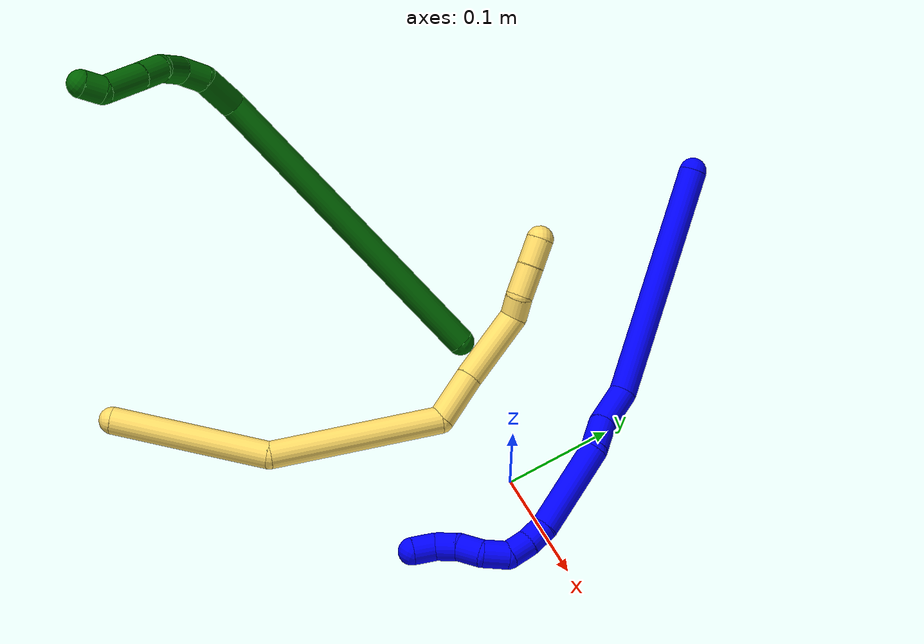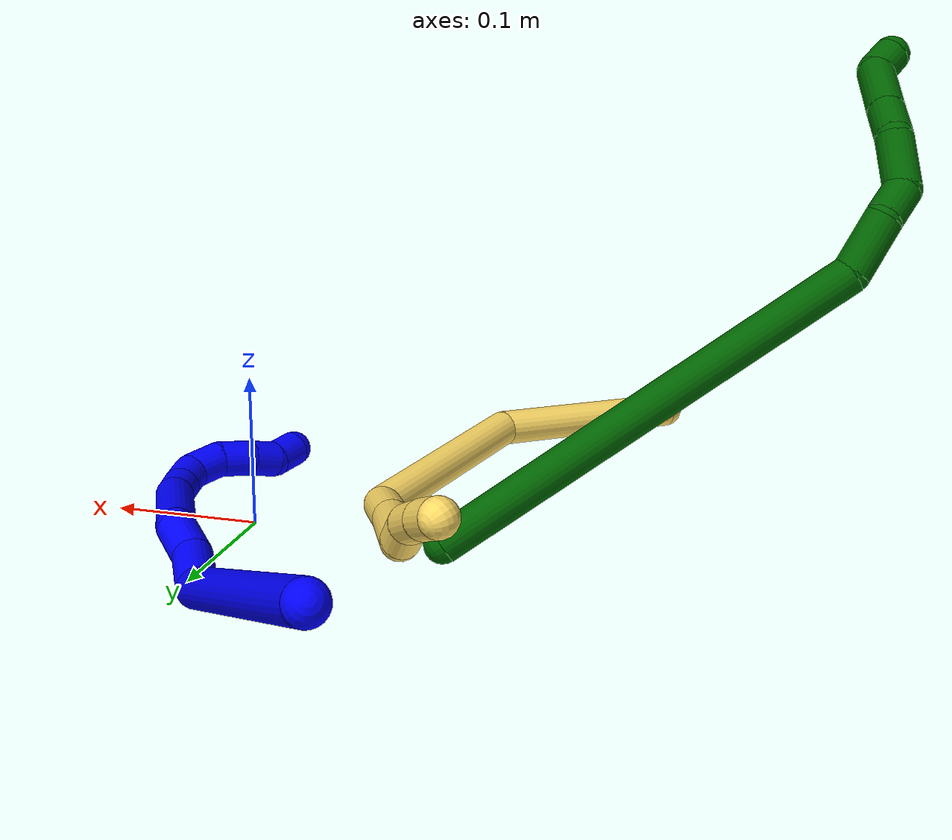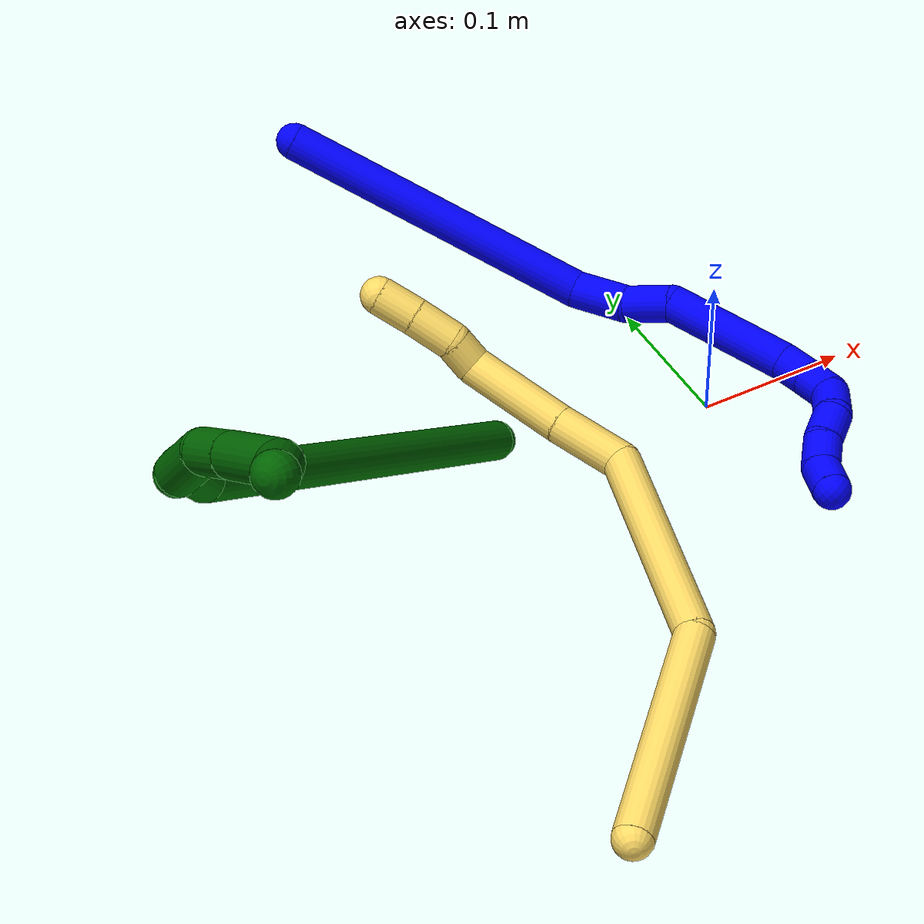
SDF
<sdf version="1.7">
 <world name="default">
  <model name="1">
   <static>0</static>
   <link name="1">
    <collision name="collision-cylinder-e_1_1_4">
     <pose>0.025068 0.01113 -0.103109 -3.03406 0.237165 -2.29305</pose>
     <geometry><cylinder><radius>0.0125</radius><length>0.21339</length></cylinder></geometry>
     <surface>
      <friction><ode><mu>1.16</mu><mu2>1.16</mu2><slip1>0</slip1><slip2>0</slip2></ode></friction>
      <contact><ode><kp>1e+06</kp><kd>1</kd><max_vel>0</max_vel><min_depth>0.001</min_depth></ode></contact>
     </surface>
    </collision>
    <visual name="visual-cylinder-e_1_1_4">
     <pose>0.025068 0.01113 -0.103109 -3.03406 0.237165 -2.29305</pose>
     <geometry><cylinder><radius>0.0125</radius><length>0.21339</length></cylinder></geometry>
     <material><ambient>0 0 1 1</ambient></material>
    </visual>
    <collision name="collision-cylinder-e_2_4_5">
     <pose>0.061311 0.018172 -0.221663 2.8828 0.61039 2.35821</pose>
     <geometry><cylinder><radius>0.0125</radius><length>0.038996</length></cylinder></geometry>
     <surface>
      <friction><ode><mu>1.16</mu><mu2>1.16</mu2><slip1>0</slip1><slip2>0</slip2></ode></friction>
      <contact><ode><kp>1e+06</kp><kd>1</kd><max_vel>0</max_vel><min_depth>0.001</min_depth></ode></contact>
     </surface>
    </collision>
    <visual name="visual-cylinder-e_2_4_5">
     <pose>0.061311 0.018172 -0.221663 2.8828 0.61039 2.35821</pose>
     <geometry><cylinder><radius>0.0125</radius><length>0.038996</length></cylinder></geometry>
     <material><ambient>0 0 1 1</ambient></material>
    </visual>
    <collision name="collision-cylinder-e_3_5_6">
     <pose>0.084318 0.013975 -0.247639 3.13132 0.843456 3.1187</pose>
     <geometry><cylinder><radius>0.0125</radius><length>0.031678</length></cylinder></geometry>
     <surface>
      <friction><ode><mu>1.16</mu><mu2>1.16</mu2><slip1>0</slip1><slip2>0</slip2></ode></friction>
      <contact><ode><kp>1e+06</kp><kd>1</kd><max_vel>0</max_vel><min_depth>0.001</min_depth></ode></contact>
     </surface>
    </collision>
    <visual name="visual-cylinder-e_3_5_6">
     <pose>0.084318 0.013975 -0.247639 3.13132 0.843456 3.1187</pose>
     <geometry><cylinder><radius>0.0125</radius><length>0.031678</length></cylinder></geometry>
     <material><ambient>0 0 1 1</ambient></material>
    </visual>
    <collision name="collision-cylinder-e_4_6_7">
     <pose>0.112217 0.006322 -0.296809 2.94876 0.387498 2.22567</pose>
     <geometry><cylinder><radius>0.0125</radius><length>0.085043</length></cylinder></geometry>
     <surface>
      <friction><ode><mu>1.16</mu><mu2>1.16</mu2><slip1>0</slip1><slip2>0</slip2></ode></friction>
      <contact><ode><kp>1e+06</kp><kd>1</kd><max_vel>0</max_vel><min_depth>0.001</min_depth></ode></contact>
     </surface>
    </collision>
    <visual name="visual-cylinder-e_4_6_7">
     <pose>0.112217 0.006322 -0.296809 2.94876 0.387498 2.22567</pose>
     <geometry><cylinder><radius>0.0125</radius><length>0.085043</length></cylinder></geometry>
     <material><ambient>0 0 1 1</ambient></material>
    </visual>
    <collision name="collision-cylinder-e_5_7_8">
     <pose>0.132085 -0.005477 -0.344174 2.68787 0.373166 1.37101</pose>
     <geometry><cylinder><radius>0.0125</radius><length>0.020852</length></cylinder></geometry>
     <surface>
      <friction><ode><mu>1.16</mu><mu2>1.16</mu2><slip1>0</slip1><slip2>0</slip2></ode></friction>
      <contact><ode><kp>1e+06</kp><kd>1</kd><max_vel>0</max_vel><min_depth>0.001</min_depth></ode></contact>
     </surface>
    </collision>
    <visual name="visual-cylinder-e_5_7_8">
     <pose>0.132085 -0.005477 -0.344174 2.68787 0.373166 1.37101</pose>
     <geometry><cylinder><radius>0.0125</radius><length>0.020852</length></cylinder></geometry>
     <material><ambient>0 0 1 1</ambient></material>
    </visual>
    <collision name="collision-cylinder-e_6_8_9">
     <pose>0.140308 -0.015708 -0.360782 2.49295 0.420351 1.13086</pose>
     <geometry><cylinder><radius>0.0125</radius><length>0.021668</length></cylinder></geometry>
     <surface>
      <friction><ode><mu>1.16</mu><mu2>1.16</mu2><slip1>0</slip1><slip2>0</slip2></ode></friction>
      <contact><ode><kp>1e+06</kp><kd>1</kd><max_vel>0</max_vel><min_depth>0.001</min_depth></ode></contact>
     </surface>
    </collision>
    <visual name="visual-cylinder-e_6_8_9">
     <pose>0.140308 -0.015708 -0.360782 2.49295 0.420351 1.13086</pose>
     <geometry><cylinder><radius>0.0125</radius><length>0.021668</length></cylinder></geometry>
     <material><ambient>0 0 1 1</ambient></material>
    </visual>
    <collision name="collision-cylinder-e_7_9_10">
     <pose>0.145685 -0.032842 -0.372631 1.91233 0.080586 0.114108</pose>
     <geometry><cylinder><radius>0.0125</radius><length>0.023763</length></cylinder></geometry>
     <surface>
      <friction><ode><mu>1.16</mu><mu2>1.16</mu2><slip1>0</slip1><slip2>0</slip2></ode></friction>
      <contact><ode><kp>1e+06</kp><kd>1</kd><max_vel>0</max_vel><min_depth>0.001</min_depth></ode></contact>
     </surface>
    </collision>
    <visual name="visual-cylinder-e_7_9_10">
     <pose>0.145685 -0.032842 -0.372631 1.91233 0.080586 0.114108</pose>
     <geometry><cylinder><radius>0.0125</radius><length>0.023763</length></cylinder></geometry>
     <material><ambient>0 0 1 1</ambient></material>
    </visual>
    <collision name="collision-cylinder-e_8_10_11">
     <pose>0.14309 -0.054128 -0.378788 1.78387 -0.330217 -0.407334</pose>
     <geometry><cylinder><radius>0.0125</radius><length>0.021907</length></cylinder></geometry>
     <surface>
      <friction><ode><mu>1.16</mu><mu2>1.16</mu2><slip1>0</slip1><slip2>0</slip2></ode></friction>
      <contact><ode><kp>1e+06</kp><kd>1</kd><max_vel>0</max_vel><min_depth>0.001</min_depth></ode></contact>
     </surface>
    </collision>
    <visual name="visual-cylinder-e_8_10_11">
     <pose>0.14309 -0.054128 -0.378788 1.78387 -0.330217 -0.407334</pose>
     <geometry><cylinder><radius>0.0125</radius><length>0.021907</length></cylinder></geometry>
     <material><ambient>0 0 1 1</ambient></material>
    </visual>
    <collision name="collision-cylinder-e_9_11_12">
     <pose>0.136457 -0.073013 -0.385589 2.05531 -0.301888 -0.493615</pose>
     <geometry><cylinder><radius>0.0125</radius><length>0.020731</length></cylinder></geometry>
     <surface>
      <friction><ode><mu>1.16</mu><mu2>1.16</mu2><slip1>0</slip1><slip2>0</slip2></ode></friction>
      <contact><ode><kp>1e+06</kp><kd>1</kd><max_vel>0</max_vel><min_depth>0.001</min_depth></ode></contact>
     </surface>
    </collision>
    <visual name="visual-cylinder-e_9_11_12">
     <pose>0.136457 -0.073013 -0.385589 2.05531 -0.301888 -0.493615</pose>
     <geometry><cylinder><radius>0.0125</radius><length>0.020731</length></cylinder></geometry>
     <material><ambient>0 0 1 1</ambient></material>
    </visual>
    <collision name="collision-cylinder-e_10_12_2">
     <pose>0.13519 -0.090791 -0.396201 2.15794 0.165991 0.308089</pose>
     <geometry><cylinder><radius>0.0125</radius><length>0.021974</length></cylinder></geometry>
     <surface>
      <friction><ode><mu>1.16</mu><mu2>1.16</mu2><slip1>0</slip1><slip2>0</slip2></ode></friction>
      <contact><ode><kp>1e+06</kp><kd>1</kd><max_vel>0</max_vel><min_depth>0.001</min_depth></ode></contact>
     </surface>
    </collision>
    <visual name="visual-cylinder-e_10_12_2">
     <pose>0.13519 -0.090791 -0.396201 2.15794 0.165991 0.308089</pose>
     <geometry><cylinder><radius>0.0125</radius><length>0.021974</length></cylinder></geometry>
     <material><ambient>0 0 1 1</ambient></material>
    </visual>
    <collision name="collision-sphere-2">
     <pose>0.137005 -0.099812 -0.402204 0 -0 0</pose>
     <geometry><sphere><radius>0.0125</radius></sphere></geometry>
     <surface>
      <friction><ode><mu>1.16</mu><mu2>1.16</mu2><slip1>0</slip1><slip2>0</slip2></ode></friction>
      <contact><ode><kp>1e+06</kp><kd>1</kd><max_vel>0</max_vel><min_depth>0.001</min_depth></ode></contact>
     </surface>
    </collision>
    <visual name="visual-sphere-2">
     <pose>0.137005 -0.099812 -0.402204 0 -0 0</pose>
     <geometry><sphere><radius>0.0125</radius></sphere></geometry>
     <material><ambient>0 0 1 1</ambient></material>
    </visual>
    <collision name="collision-sphere-12">
     <pose>0.133375 -0.08177 -0.390198 0 -0 0</pose>
     <geometry><sphere><radius>0.0125</radius></sphere></geometry>
     <surface>
      <friction><ode><mu>1.16</mu><mu2>1.16</mu2><slip1>0</slip1><slip2>0</slip2></ode></friction>
      <contact><ode><kp>1e+06</kp><kd>1</kd><max_vel>0</max_vel><min_depth>0.001</min_depth></ode></contact>
     </surface>
    </collision>
    <visual name="visual-sphere-12">
     <pose>0.133375 -0.08177 -0.390198 0 -0 0</pose>
     <geometry><sphere><radius>0.0125</radius></sphere></geometry>
     <material><ambient>0 0 1 1</ambient></material>
    </visual>
    <collision name="collision-sphere-11">
     <pose>0.139538 -0.064255 -0.380979 0 -0 0</pose>
     <geometry><sphere><radius>0.0125</radius></sphere></geometry>
     <surface>
      <friction><ode><mu>1.16</mu><mu2>1.16</mu2><slip1>0</slip1><slip2>0</slip2></ode></friction>
      <contact><ode><kp>1e+06</kp><kd>1</kd><max_vel>0</max_vel><min_depth>0.001</min_depth></ode></contact>
     </surface>
    </collision>
    <visual name="visual-sphere-11">
     <pose>0.139538 -0.064255 -0.380979 0 -0 0</pose>
     <geometry><sphere><radius>0.0125</radius></sphere></geometry>
     <material><ambient>0 0 1 1</ambient></material>
    </visual>
    <collision name="collision-sphere-10">
     <pose>0.146642 -0.044001 -0.376597 0 -0 0</pose>
     <geometry><sphere><radius>0.0125</radius></sphere></geometry>
     <surface>
      <friction><ode><mu>1.16</mu><mu2>1.16</mu2><slip1>0</slip1><slip2>0</slip2></ode></friction>
      <contact><ode><kp>1e+06</kp><kd>1</kd><max_vel>0</max_vel><min_depth>0.001</min_depth></ode></contact>
     </surface>
    </collision>
    <visual name="visual-sphere-10">
     <pose>0.146642 -0.044001 -0.376597 0 -0 0</pose>
     <geometry><sphere><radius>0.0125</radius></sphere></geometry>
     <material><ambient>0 0 1 1</ambient></material>
    </visual>
    <collision name="collision-sphere-9">
     <pose>0.144729 -0.021683 -0.368664 0 -0 0</pose>
     <geometry><sphere><radius>0.0125</radius></sphere></geometry>
     <surface>
      <friction><ode><mu>1.16</mu><mu2>1.16</mu2><slip1>0</slip1><slip2>0</slip2></ode></friction>
      <contact><ode><kp>1e+06</kp><kd>1</kd><max_vel>0</max_vel><min_depth>0.001</min_depth></ode></contact>
     </surface>
    </collision>
    <visual name="visual-sphere-9">
     <pose>0.144729 -0.021683 -0.368664 0 -0 0</pose>
     <geometry><sphere><radius>0.0125</radius></sphere></geometry>
     <material><ambient>0 0 1 1</ambient></material>
    </visual>
    <collision name="collision-sphere-4">
     <pose>0.050135 0.02226 -0.206218 0 -0 0</pose>
     <geometry><sphere><radius>0.0125</radius></sphere></geometry>
     <surface>
      <friction><ode><mu>1.16</mu><mu2>1.16</mu2><slip1>0</slip1><slip2>0</slip2></ode></friction>
      <contact><ode><kp>1e+06</kp><kd>1</kd><max_vel>0</max_vel><min_depth>0.001</min_depth></ode></contact>
     </surface>
    </collision>
    <visual name="visual-sphere-4">
     <pose>0.050135 0.02226 -0.206218 0 -0 0</pose>
     <geometry><sphere><radius>0.0125</radius></sphere></geometry>
     <material><ambient>0 0 1 1</ambient></material>
    </visual>
    <collision name="collision-sphere-1">
     <geometry><sphere><radius>0.0125</radius></sphere></geometry>
     <surface>
      <friction><ode><mu>1.16</mu><mu2>1.16</mu2><slip1>0</slip1><slip2>0</slip2></ode></friction>
      <contact><ode><kp>1e+06</kp><kd>1</kd><max_vel>0</max_vel><min_depth>0.001</min_depth></ode></contact>
     </surface>
    </collision>
    <visual name="visual-sphere-1">
     <geometry><sphere><radius>0.0125</radius></sphere></geometry>
     <material><ambient>0 0 1 1</ambient></material>
    </visual>
    <collision name="collision-sphere-8">
     <pose>0.135886 -0.009733 -0.3529 0 -0 0</pose>
     <geometry><sphere><radius>0.0125</radius></sphere></geometry>
     <surface>
      <friction><ode><mu>1.16</mu><mu2>1.16</mu2><slip1>0</slip1><slip2>0</slip2></ode></friction>
      <contact><ode><kp>1e+06</kp><kd>1</kd><max_vel>0</max_vel><min_depth>0.001</min_depth></ode></contact>
     </surface>
    </collision>
    <visual name="visual-sphere-8">
     <pose>0.135886 -0.009733 -0.3529 0 -0 0</pose>
     <geometry><sphere><radius>0.0125</radius></sphere></geometry>
     <material><ambient>0 0 1 1</ambient></material>
    </visual>
    <collision name="collision-sphere-5">
     <pose>0.072487 0.014083 -0.237109 0 -0 0</pose>
     <geometry><sphere><radius>0.0125</radius></sphere></geometry>
     <surface>
      <friction><ode><mu>1.16</mu><mu2>1.16</mu2><slip1>0</slip1><slip2>0</slip2></ode></friction>
      <contact><ode><kp>1e+06</kp><kd>1</kd><max_vel>0</max_vel><min_depth>0.001</min_depth></ode></contact>
     </surface>
    </collision>
    <visual name="visual-sphere-5">
     <pose>0.072487 0.014083 -0.237109 0 -0 0</pose>
     <geometry><sphere><radius>0.0125</radius></sphere></geometry>
     <material><ambient>0 0 1 1</ambient></material>
    </visual>
    <collision name="collision-sphere-6">
     <pose>0.096149 0.013867 -0.25817 0 -0 0</pose>
     <geometry><sphere><radius>0.0125</radius></sphere></geometry>
     <surface>
      <friction><ode><mu>1.16</mu><mu2>1.16</mu2><slip1>0</slip1><slip2>0</slip2></ode></friction>
      <contact><ode><kp>1e+06</kp><kd>1</kd><max_vel>0</max_vel><min_depth>0.001</min_depth></ode></contact>
     </surface>
    </collision>
    <visual name="visual-sphere-6">
     <pose>0.096149 0.013867 -0.25817 0 -0 0</pose>
     <geometry><sphere><radius>0.0125</radius></sphere></geometry>
     <material><ambient>0 0 1 1</ambient></material>
    </visual>
    <collision name="collision-sphere-7">
     <pose>0.128285 -0.001222 -0.335448 0 -0 0</pose>
     <geometry><sphere><radius>0.0125</radius></sphere></geometry>
     <surface>
      <friction><ode><mu>1.16</mu><mu2>1.16</mu2><slip1>0</slip1><slip2>0</slip2></ode></friction>
      <contact><ode><kp>1e+06</kp><kd>1</kd><max_vel>0</max_vel><min_depth>0.001</min_depth></ode></contact>
     </surface>
    </collision>
    <visual name="visual-sphere-7">
     <pose>0.128285 -0.001222 -0.335448 0 -0 0</pose>
     <geometry><sphere><radius>0.0125</radius></sphere></geometry>
     <material><ambient>0 0 1 1</ambient></material>
    </visual>
    <inertial>
     <pose>0.076289 -0.003731 -0.225158 0 -0 0</pose>
     <mass>0.5</mass>
     <inertia>
      <ixx>-0.001095</ixx>
      <ixy>0</ixy>
      <ixz>0</ixz>
      <iyy>3.7e-05</iyy>
      <iyz>0</iyz>
      <izz>-0.000318</izz>
     </inertia>
    </inertial>
   </link>
   <pose>-0.153646 0.281423 0.084327 -0.48324 -0.942554 -0.463103</pose>
  </model>
  <model name="5">
   <static>0</static>
   <link name="5">
    <collision name="collision-cylinder-e_1_1_4">
     <pose>0.010656 -0.024719 -0.069117 2.79813 0.144166 0.789004</pose>
     <geometry><cylinder><radius>0.0125</radius><length>0.148348</length></cylinder></geometry>
     <surface>
      <friction><ode><mu>1.16</mu><mu2>1.16</mu2><slip1>0</slip1><slip2>0</slip2></ode></friction>
      <contact><ode><kp>1e+06</kp><kd>1</kd><max_vel>0</max_vel><min_depth>0.001</min_depth></ode></contact>
     </surface>
    </collision>
    <visual name="visual-cylinder-e_1_1_4">
     <pose>0.010656 -0.024719 -0.069117 2.79813 0.144166 0.789004</pose>
     <geometry><cylinder><radius>0.0125</radius><length>0.148348</length></cylinder></geometry>
     <material><ambient>1 0.858824 0.4 1</ambient></material>
    </visual>
    <collision name="collision-cylinder-e_2_4_5">
     <pose>0.034968 -0.034462 -0.214876 -2.94862 0.173108 -1.46176</pose>
     <geometry><cylinder><radius>0.0125</radius><length>0.158551</length></cylinder></geometry>
     <surface>
      <friction><ode><mu>1.16</mu><mu2>1.16</mu2><slip1>0</slip1><slip2>0</slip2></ode></friction>
      <contact><ode><kp>1e+06</kp><kd>1</kd><max_vel>0</max_vel><min_depth>0.001</min_depth></ode></contact>
     </surface>
    </collision>
    <visual name="visual-cylinder-e_2_4_5">
     <pose>0.034968 -0.034462 -0.214876 -2.94862 0.173108 -1.46176</pose>
     <geometry><cylinder><radius>0.0125</radius><length>0.158551</length></cylinder></geometry>
     <material><ambient>1 0.858824 0.4 1</ambient></material>
    </visual>
    <collision name="collision-cylinder-e_3_5_6">
     <pose>0.059703 -0.002733 -0.303791 -2.20309 0.490119 -0.916455</pose>
     <geometry><cylinder><radius>0.0125</radius><length>0.047078</length></cylinder></geometry>
     <surface>
      <friction><ode><mu>1.16</mu><mu2>1.16</mu2><slip1>0</slip1><slip2>0</slip2></ode></friction>
      <contact><ode><kp>1e+06</kp><kd>1</kd><max_vel>0</max_vel><min_depth>0.001</min_depth></ode></contact>
     </surface>
    </collision>
    <visual name="visual-cylinder-e_3_5_6">
     <pose>0.059703 -0.002733 -0.303791 -2.20309 0.490119 -0.916455</pose>
     <geometry><cylinder><radius>0.0125</radius><length>0.047078</length></cylinder></geometry>
     <material><ambient>1 0.858824 0.4 1</ambient></material>
    </visual>
    <collision name="collision-cylinder-e_4_6_7">
     <pose>0.087596 0.03754 -0.335628 -2.2646 0.502517 -1.00163</pose>
     <geometry><cylinder><radius>0.0125</radius><length>0.069816</length></cylinder></geometry>
     <surface>
      <friction><ode><mu>1.16</mu><mu2>1.16</mu2><slip1>0</slip1><slip2>0</slip2></ode></friction>
      <contact><ode><kp>1e+06</kp><kd>1</kd><max_vel>0</max_vel><min_depth>0.001</min_depth></ode></contact>
     </surface>
    </collision>
    <visual name="visual-cylinder-e_4_6_7">
     <pose>0.087596 0.03754 -0.335628 -2.2646 0.502517 -1.00163</pose>
     <geometry><cylinder><radius>0.0125</radius><length>0.069816</length></cylinder></geometry>
     <material><ambient>1 0.858824 0.4 1</ambient></material>
    </visual>
    <collision name="collision-cylinder-e_5_7_8">
     <pose>0.114074 0.065115 -0.356499 -1.88294 1.15554 -1.46062</pose>
     <geometry><cylinder><radius>0.0125</radius><length>0.021125</length></cylinder></geometry>
     <surface>
      <friction><ode><mu>1.16</mu><mu2>1.16</mu2><slip1>0</slip1><slip2>0</slip2></ode></friction>
      <contact><ode><kp>1e+06</kp><kd>1</kd><max_vel>0</max_vel><min_depth>0.001</min_depth></ode></contact>
     </surface>
    </collision>
    <visual name="visual-cylinder-e_5_7_8">
     <pose>0.114074 0.065115 -0.356499 -1.88294 1.15554 -1.46062</pose>
     <geometry><cylinder><radius>0.0125</radius><length>0.021125</length></cylinder></geometry>
     <material><ambient>1 0.858824 0.4 1</ambient></material>
    </visual>
    <collision name="collision-cylinder-e_6_8_9">
     <pose>0.133568 0.078881 -0.361862 -1.96636 0.75134 -1.06918</pose>
     <geometry><cylinder><radius>0.0125</radius><length>0.028798</length></cylinder></geometry>
     <surface>
      <friction><ode><mu>1.16</mu><mu2>1.16</mu2><slip1>0</slip1><slip2>0</slip2></ode></friction>
      <contact><ode><kp>1e+06</kp><kd>1</kd><max_vel>0</max_vel><min_depth>0.001</min_depth></ode></contact>
     </surface>
    </collision>
    <visual name="visual-cylinder-e_6_8_9">
     <pose>0.133568 0.078881 -0.361862 -1.96636 0.75134 -1.06918</pose>
     <geometry><cylinder><radius>0.0125</radius><length>0.028798</length></cylinder></geometry>
     <material><ambient>1 0.858824 0.4 1</ambient></material>
    </visual>
    <collision name="collision-cylinder-e_7_9_2">
     <pose>0.151886 0.097892 -0.369675 -1.95476 0.702273 -0.995036</pose>
     <geometry><cylinder><radius>0.0125</radius><length>0.026283</length></cylinder></geometry>
     <surface>
      <friction><ode><mu>1.16</mu><mu2>1.16</mu2><slip1>0</slip1><slip2>0</slip2></ode></friction>
      <contact><ode><kp>1e+06</kp><kd>1</kd><max_vel>0</max_vel><min_depth>0.001</min_depth></ode></contact>
     </surface>
    </collision>
    <visual name="visual-cylinder-e_7_9_2">
     <pose>0.151886 0.097892 -0.369675 -1.95476 0.702273 -0.995036</pose>
     <geometry><cylinder><radius>0.0125</radius><length>0.026283</length></cylinder></geometry>
     <material><ambient>1 0.858824 0.4 1</ambient></material>
    </visual>
    <collision name="collision-sphere-2">
     <pose>0.160375 0.107194 -0.373433 0 -0 0</pose>
     <geometry><sphere><radius>0.0125</radius></sphere></geometry>
     <surface>
      <friction><ode><mu>1.16</mu><mu2>1.16</mu2><slip1>0</slip1><slip2>0</slip2></ode></friction>
      <contact><ode><kp>1e+06</kp><kd>1</kd><max_vel>0</max_vel><min_depth>0.001</min_depth></ode></contact>
     </surface>
    </collision>
    <visual name="visual-sphere-2">
     <pose>0.160375 0.107194 -0.373433 0 -0 0</pose>
     <geometry><sphere><radius>0.0125</radius></sphere></geometry>
     <material><ambient>1 0.858824 0.4 1</ambient></material>
    </visual>
    <collision name="collision-sphere-9">
     <pose>0.143397 0.088591 -0.365917 0 -0 0</pose>
     <geometry><sphere><radius>0.0125</radius></sphere></geometry>
     <surface>
      <friction><ode><mu>1.16</mu><mu2>1.16</mu2><slip1>0</slip1><slip2>0</slip2></ode></friction>
      <contact><ode><kp>1e+06</kp><kd>1</kd><max_vel>0</max_vel><min_depth>0.001</min_depth></ode></contact>
     </surface>
    </collision>
    <visual name="visual-sphere-9">
     <pose>0.143397 0.088591 -0.365917 0 -0 0</pose>
     <geometry><sphere><radius>0.0125</radius></sphere></geometry>
     <material><ambient>1 0.858824 0.4 1</ambient></material>
    </visual>
    <collision name="collision-sphere-4">
     <pose>0.021313 -0.049438 -0.138235 0 -0 0</pose>
     <geometry><sphere><radius>0.0125</radius></sphere></geometry>
     <surface>
      <friction><ode><mu>1.16</mu><mu2>1.16</mu2><slip1>0</slip1><slip2>0</slip2></ode></friction>
      <contact><ode><kp>1e+06</kp><kd>1</kd><max_vel>0</max_vel><min_depth>0.001</min_depth></ode></contact>
     </surface>
    </collision>
    <visual name="visual-sphere-4">
     <pose>0.021313 -0.049438 -0.138235 0 -0 0</pose>
     <geometry><sphere><radius>0.0125</radius></sphere></geometry>
     <material><ambient>1 0.858824 0.4 1</ambient></material>
    </visual>
    <collision name="collision-sphere-1">
     <geometry><sphere><radius>0.0125</radius></sphere></geometry>
     <surface>
      <friction><ode><mu>1.16</mu><mu2>1.16</mu2><slip1>0</slip1><slip2>0</slip2></ode></friction>
      <contact><ode><kp>1e+06</kp><kd>1</kd><max_vel>0</max_vel><min_depth>0.001</min_depth></ode></contact>
     </surface>
    </collision>
    <visual name="visual-sphere-1">
     <geometry><sphere><radius>0.0125</radius></sphere></geometry>
     <material><ambient>1 0.858824 0.4 1</ambient></material>
    </visual>
    <collision name="collision-sphere-8">
     <pose>0.123739 0.069171 -0.357808 0 -0 0</pose>
     <geometry><sphere><radius>0.0125</radius></sphere></geometry>
     <surface>
      <friction><ode><mu>1.16</mu><mu2>1.16</mu2><slip1>0</slip1><slip2>0</slip2></ode></friction>
      <contact><ode><kp>1e+06</kp><kd>1</kd><max_vel>0</max_vel><min_depth>0.001</min_depth></ode></contact>
     </surface>
    </collision>
    <visual name="visual-sphere-8">
     <pose>0.123739 0.069171 -0.357808 0 -0 0</pose>
     <geometry><sphere><radius>0.0125</radius></sphere></geometry>
     <material><ambient>1 0.858824 0.4 1</ambient></material>
    </visual>
    <collision name="collision-sphere-5">
     <pose>0.048622 -0.019486 -0.291517 0 -0 0</pose>
     <geometry><sphere><radius>0.0125</radius></sphere></geometry>
     <surface>
      <friction><ode><mu>1.16</mu><mu2>1.16</mu2><slip1>0</slip1><slip2>0</slip2></ode></friction>
      <contact><ode><kp>1e+06</kp><kd>1</kd><max_vel>0</max_vel><min_depth>0.001</min_depth></ode></contact>
     </surface>
    </collision>
    <visual name="visual-sphere-5">
     <pose>0.048622 -0.019486 -0.291517 0 -0 0</pose>
     <geometry><sphere><radius>0.0125</radius></sphere></geometry>
     <material><ambient>1 0.858824 0.4 1</ambient></material>
    </visual>
    <collision name="collision-sphere-6">
     <pose>0.070784 0.01402 -0.316065 0 -0 0</pose>
     <geometry><sphere><radius>0.0125</radius></sphere></geometry>
     <surface>
      <friction><ode><mu>1.16</mu><mu2>1.16</mu2><slip1>0</slip1><slip2>0</slip2></ode></friction>
      <contact><ode><kp>1e+06</kp><kd>1</kd><max_vel>0</max_vel><min_depth>0.001</min_depth></ode></contact>
     </surface>
    </collision>
    <visual name="visual-sphere-6">
     <pose>0.070784 0.01402 -0.316065 0 -0 0</pose>
     <geometry><sphere><radius>0.0125</radius></sphere></geometry>
     <material><ambient>1 0.858824 0.4 1</ambient></material>
    </visual>
    <collision name="collision-sphere-7">
     <pose>0.104409 0.06106 -0.35519 0 -0 0</pose>
     <geometry><sphere><radius>0.0125</radius></sphere></geometry>
     <surface>
      <friction><ode><mu>1.16</mu><mu2>1.16</mu2><slip1>0</slip1><slip2>0</slip2></ode></friction>
      <contact><ode><kp>1e+06</kp><kd>1</kd><max_vel>0</max_vel><min_depth>0.001</min_depth></ode></contact>
     </surface>
    </collision>
    <visual name="visual-sphere-7">
     <pose>0.104409 0.06106 -0.35519 0 -0 0</pose>
     <geometry><sphere><radius>0.0125</radius></sphere></geometry>
     <material><ambient>1 0.858824 0.4 1</ambient></material>
    </visual>
    <inertial>
     <pose>0.052599 -0.000837 -0.219449 0 -0 0</pose>
     <mass>0.5</mass>
     <inertia>
      <ixx>9.4e-05</ixx>
      <ixy>0</ixy>
      <ixz>0</ixz>
      <iyy>-0.000361</iyy>
      <iyz>0</iyz>
      <izz>-0.000157</izz>
     </inertia>
    </inertial>
   </link>
   <pose>-0.226602 -0.283662 0.011588 -0.981907 -1.24811 2.07899</pose>
  </model>
  <model name="6">
   <static>0</static>
   <link name="6">
    <collision name="collision-cylinder-e_1_1_4">
     <pose>0.016332 0.017539 0.14977 -0.116575 0.107887 -0.006302</pose>
     <geometry><cylinder><radius>0.0125</radius><length>0.303351</length></cylinder></geometry>
     <surface>
      <friction><ode><mu>1.16</mu><mu2>1.16</mu2><slip1>0</slip1><slip2>0</slip2></ode></friction>
      <contact><ode><kp>1e+06</kp><kd>1</kd><max_vel>0</max_vel><min_depth>0.001</min_depth></ode></contact>
     </surface>
    </collision>
    <visual name="visual-cylinder-e_1_1_4">
     <pose>0.016332 0.017539 0.14977 -0.116575 0.107887 -0.006302</pose>
     <geometry><cylinder><radius>0.0125</radius><length>0.303351</length></cylinder></geometry>
     <material><ambient>0 0.392157 0.003922 1</ambient></material>
    </visual>
    <collision name="collision-cylinder-e_2_4_5">
     <pose>0.040165 0.030465 0.317882 0.246404 0.377558 0.047307</pose>
     <geometry><cylinder><radius>0.0125</radius><length>0.040691</length></cylinder></geometry>
     <surface>
      <friction><ode><mu>1.16</mu><mu2>1.16</mu2><slip1>0</slip1><slip2>0</slip2></ode></friction>
      <contact><ode><kp>1e+06</kp><kd>1</kd><max_vel>0</max_vel><min_depth>0.001</min_depth></ode></contact>
     </surface>
    </collision>
    <visual name="visual-cylinder-e_2_4_5">
     <pose>0.040165 0.030465 0.317882 0.246404 0.377558 0.047307</pose>
     <geometry><cylinder><radius>0.0125</radius><length>0.040691</length></cylinder></geometry>
     <material><ambient>0 0.392157 0.003922 1</ambient></material>
    </visual>
    <collision name="collision-cylinder-e_3_5_6">
     <pose>0.048607 0.020369 0.348004 0.435554 0.072346 0.016016</pose>
     <geometry><cylinder><radius>0.0125</radius><length>0.026056</length></cylinder></geometry>
     <surface>
      <friction><ode><mu>1.16</mu><mu2>1.16</mu2><slip1>0</slip1><slip2>0</slip2></ode></friction>
      <contact><ode><kp>1e+06</kp><kd>1</kd><max_vel>0</max_vel><min_depth>0.001</min_depth></ode></contact>
     </surface>
    </collision>
    <visual name="visual-cylinder-e_3_5_6">
     <pose>0.048607 0.020369 0.348004 0.435554 0.072346 0.016016</pose>
     <geometry><cylinder><radius>0.0125</radius><length>0.026056</length></cylinder></geometry>
     <material><ambient>0 0.392157 0.003922 1</ambient></material>
    </visual>
    <collision name="collision-cylinder-e_4_6_7">
     <pose>0.058342 0.001337 0.369158 0.965614 0.490244 0.260764</pose>
     <geometry><cylinder><radius>0.0125</radius><length>0.037351</length></cylinder></geometry>
     <surface>
      <friction><ode><mu>1.16</mu><mu2>1.16</mu2><slip1>0</slip1><slip2>0</slip2></ode></friction>
      <contact><ode><kp>1e+06</kp><kd>1</kd><max_vel>0</max_vel><min_depth>0.001</min_depth></ode></contact>
     </surface>
    </collision>
    <visual name="visual-cylinder-e_4_6_7">
     <pose>0.058342 0.001337 0.369158 0.965614 0.490244 0.260764</pose>
     <geometry><cylinder><radius>0.0125</radius><length>0.037351</length></cylinder></geometry>
     <material><ambient>0 0.392157 0.003922 1</ambient></material>
    </visual>
    <collision name="collision-cylinder-e_5_7_8">
     <pose>0.068216 -0.02422 0.38486 1.08577 0.079518 0.047994</pose>
     <geometry><cylinder><radius>0.0125</radius><length>0.027232</length></cylinder></geometry>
     <surface>
      <friction><ode><mu>1.16</mu><mu2>1.16</mu2><slip1>0</slip1><slip2>0</slip2></ode></friction>
      <contact><ode><kp>1e+06</kp><kd>1</kd><max_vel>0</max_vel><min_depth>0.001</min_depth></ode></contact>
     </surface>
    </collision>
    <visual name="visual-cylinder-e_5_7_8">
     <pose>0.068216 -0.02422 0.38486 1.08577 0.079518 0.047994</pose>
     <geometry><cylinder><radius>0.0125</radius><length>0.027232</length></cylinder></geometry>
     <material><ambient>0 0.392157 0.003922 1</ambient></material>
    </visual>
    <collision name="collision-cylinder-e_6_8_9">
     <pose>0.070713 -0.055706 0.401903 1.06787 0.063577 0.037596</pose>
     <geometry><cylinder><radius>0.0125</radius><length>0.044553</length></cylinder></geometry>
     <surface>
      <friction><ode><mu>1.16</mu><mu2>1.16</mu2><slip1>0</slip1><slip2>0</slip2></ode></friction>
      <contact><ode><kp>1e+06</kp><kd>1</kd><max_vel>0</max_vel><min_depth>0.001</min_depth></ode></contact>
     </surface>
    </collision>
    <visual name="visual-cylinder-e_6_8_9">
     <pose>0.070713 -0.055706 0.401903 1.06787 0.063577 0.037596</pose>
     <geometry><cylinder><radius>0.0125</radius><length>0.044553</length></cylinder></geometry>
     <material><ambient>0 0.392157 0.003922 1</ambient></material>
    </visual>
    <collision name="collision-cylinder-e_7_9_2">
     <pose>0.071741 -0.07925 0.422165 0.40255 -0.037342 -0.00762</pose>
     <geometry><cylinder><radius>0.0125</radius><length>0.020765</length></cylinder></geometry>
     <surface>
      <friction><ode><mu>1.16</mu><mu2>1.16</mu2><slip1>0</slip1><slip2>0</slip2></ode></friction>
      <contact><ode><kp>1e+06</kp><kd>1</kd><max_vel>0</max_vel><min_depth>0.001</min_depth></ode></contact>
     </surface>
    </collision>
    <visual name="visual-cylinder-e_7_9_2">
     <pose>0.071741 -0.07925 0.422165 0.40255 -0.037342 -0.00762</pose>
     <geometry><cylinder><radius>0.0125</radius><length>0.020765</length></cylinder></geometry>
     <material><ambient>0 0.392157 0.003922 1</ambient></material>
    </visual>
    <collision name="collision-sphere-2">
     <pose>0.071353 -0.083315 0.431711 0 -0 0</pose>
     <geometry><sphere><radius>0.0125</radius></sphere></geometry>
     <surface>
      <friction><ode><mu>1.16</mu><mu2>1.16</mu2><slip1>0</slip1><slip2>0</slip2></ode></friction>
      <contact><ode><kp>1e+06</kp><kd>1</kd><max_vel>0</max_vel><min_depth>0.001</min_depth></ode></contact>
     </surface>
    </collision>
    <visual name="visual-sphere-2">
     <pose>0.071353 -0.083315 0.431711 0 -0 0</pose>
     <geometry><sphere><radius>0.0125</radius></sphere></geometry>
     <material><ambient>0 0.392157 0.003922 1</ambient></material>
    </visual>
    <collision name="collision-sphere-9">
     <pose>0.072129 -0.075185 0.412619 0 -0 0</pose>
     <geometry><sphere><radius>0.0125</radius></sphere></geometry>
     <surface>
      <friction><ode><mu>1.16</mu><mu2>1.16</mu2><slip1>0</slip1><slip2>0</slip2></ode></friction>
      <contact><ode><kp>1e+06</kp><kd>1</kd><max_vel>0</max_vel><min_depth>0.001</min_depth></ode></contact>
     </surface>
    </collision>
    <visual name="visual-sphere-9">
     <pose>0.072129 -0.075185 0.412619 0 -0 0</pose>
     <geometry><sphere><radius>0.0125</radius></sphere></geometry>
     <material><ambient>0 0.392157 0.003922 1</ambient></material>
    </visual>
    <collision name="collision-sphere-4">
     <pose>0.032664 0.035078 0.299541 0 -0 0</pose>
     <geometry><sphere><radius>0.0125</radius></sphere></geometry>
     <surface>
      <friction><ode><mu>1.16</mu><mu2>1.16</mu2><slip1>0</slip1><slip2>0</slip2></ode></friction>
      <contact><ode><kp>1e+06</kp><kd>1</kd><max_vel>0</max_vel><min_depth>0.001</min_depth></ode></contact>
     </surface>
    </collision>
    <visual name="visual-sphere-4">
     <pose>0.032664 0.035078 0.299541 0 -0 0</pose>
     <geometry><sphere><radius>0.0125</radius></sphere></geometry>
     <material><ambient>0 0.392157 0.003922 1</ambient></material>
    </visual>
    <collision name="collision-sphere-1">
     <geometry><sphere><radius>0.0125</radius></sphere></geometry>
     <surface>
      <friction><ode><mu>1.16</mu><mu2>1.16</mu2><slip1>0</slip1><slip2>0</slip2></ode></friction>
      <contact><ode><kp>1e+06</kp><kd>1</kd><max_vel>0</max_vel><min_depth>0.001</min_depth></ode></contact>
     </surface>
    </collision>
    <visual name="visual-sphere-1">
     <geometry><sphere><radius>0.0125</radius></sphere></geometry>
     <material><ambient>0 0.392157 0.003922 1</ambient></material>
    </visual>
    <collision name="collision-sphere-8">
     <pose>0.069298 -0.036228 0.391188 0 -0 0</pose>
     <geometry><sphere><radius>0.0125</radius></sphere></geometry>
     <surface>
      <friction><ode><mu>1.16</mu><mu2>1.16</mu2><slip1>0</slip1><slip2>0</slip2></ode></friction>
      <contact><ode><kp>1e+06</kp><kd>1</kd><max_vel>0</max_vel><min_depth>0.001</min_depth></ode></contact>
     </surface>
    </collision>
    <visual name="visual-sphere-8">
     <pose>0.069298 -0.036228 0.391188 0 -0 0</pose>
     <geometry><sphere><radius>0.0125</radius></sphere></geometry>
     <material><ambient>0 0.392157 0.003922 1</ambient></material>
    </visual>
    <collision name="collision-sphere-5">
     <pose>0.047665 0.025852 0.336223 0 -0 0</pose>
     <geometry><sphere><radius>0.0125</radius></sphere></geometry>
     <surface>
      <friction><ode><mu>1.16</mu><mu2>1.16</mu2><slip1>0</slip1><slip2>0</slip2></ode></friction>
      <contact><ode><kp>1e+06</kp><kd>1</kd><max_vel>0</max_vel><min_depth>0.001</min_depth></ode></contact>
     </surface>
    </collision>
    <visual name="visual-sphere-5">
     <pose>0.047665 0.025852 0.336223 0 -0 0</pose>
     <geometry><sphere><radius>0.0125</radius></sphere></geometry>
     <material><ambient>0 0.392157 0.003922 1</ambient></material>
    </visual>
    <collision name="collision-sphere-6">
     <pose>0.049548 0.014887 0.359785 0 -0 0</pose>
     <geometry><sphere><radius>0.0125</radius></sphere></geometry>
     <surface>
      <friction><ode><mu>1.16</mu><mu2>1.16</mu2><slip1>0</slip1><slip2>0</slip2></ode></friction>
      <contact><ode><kp>1e+06</kp><kd>1</kd><max_vel>0</max_vel><min_depth>0.001</min_depth></ode></contact>
     </surface>
    </collision>
    <visual name="visual-sphere-6">
     <pose>0.049548 0.014887 0.359785 0 -0 0</pose>
     <geometry><sphere><radius>0.0125</radius></sphere></geometry>
     <material><ambient>0 0.392157 0.003922 1</ambient></material>
    </visual>
    <collision name="collision-sphere-7">
     <pose>0.067135 -0.012212 0.378531 0 -0 0</pose>
     <geometry><sphere><radius>0.0125</radius></sphere></geometry>
     <surface>
      <friction><ode><mu>1.16</mu><mu2>1.16</mu2><slip1>0</slip1><slip2>0</slip2></ode></friction>
      <contact><ode><kp>1e+06</kp><kd>1</kd><max_vel>0</max_vel><min_depth>0.001</min_depth></ode></contact>
     </surface>
    </collision>
    <visual name="visual-sphere-7">
     <pose>0.067135 -0.012212 0.378531 0 -0 0</pose>
     <geometry><sphere><radius>0.0125</radius></sphere></geometry>
     <material><ambient>0 0.392157 0.003922 1</ambient></material>
    </visual>
    <inertial>
     <pose>0.033064 0.004707 0.236754 0 -0 0</pose>
     <mass>0.5</mass>
     <inertia>
      <ixx>0.002345</ixx>
      <ixy>0</ixy>
      <ixz>0</ixz>
      <iyy>0.002324</iyy>
      <iyz>0</iyz>
      <izz>-0.000477</izz>
     </inertia>
    </inertial>
   </link>
   <pose>-0.13964 0.029062 0.011498 -0.445366 -1.00425 1.08973</pose>
  </model>
 </world>
</sdf>
